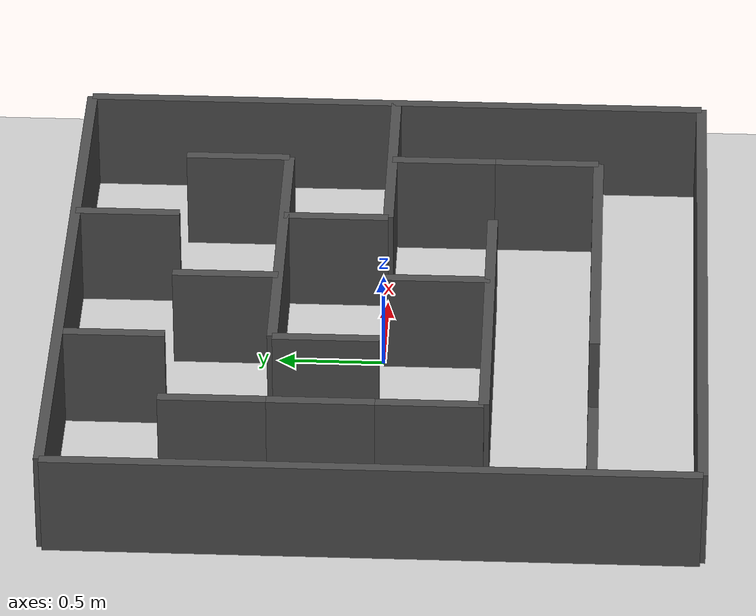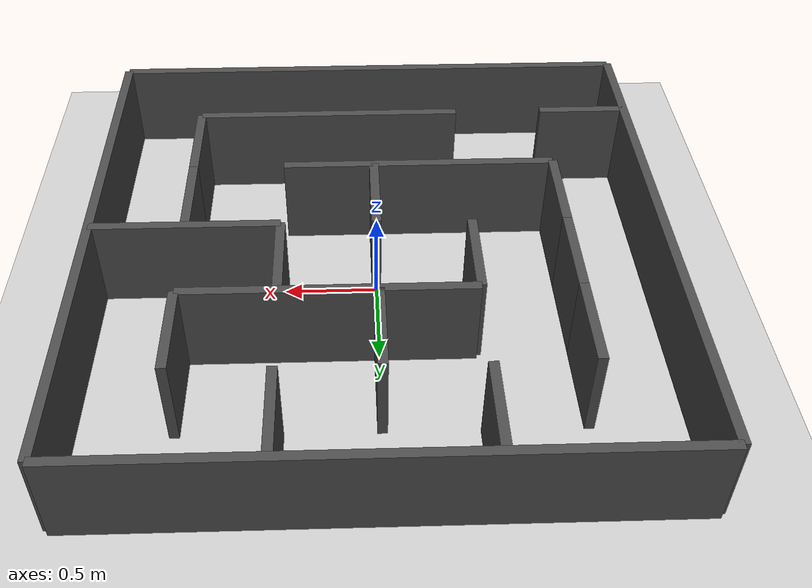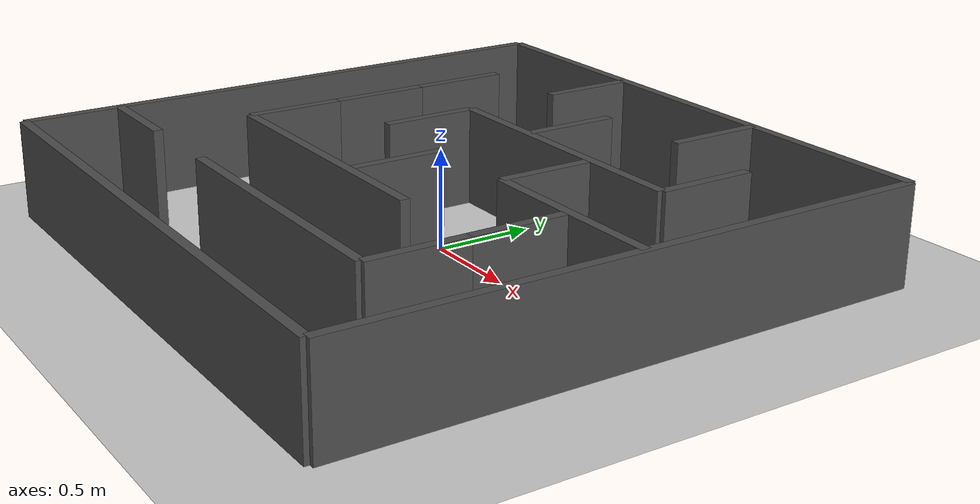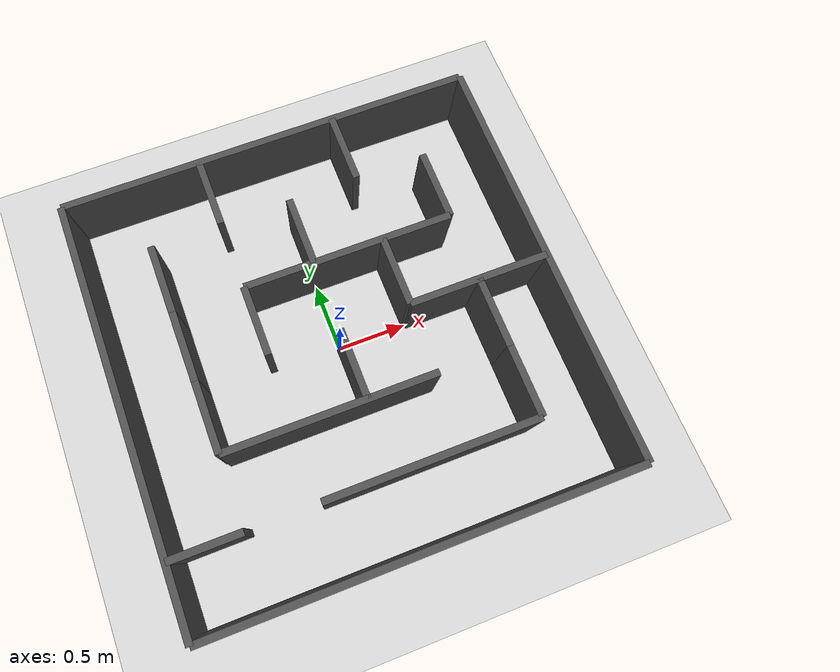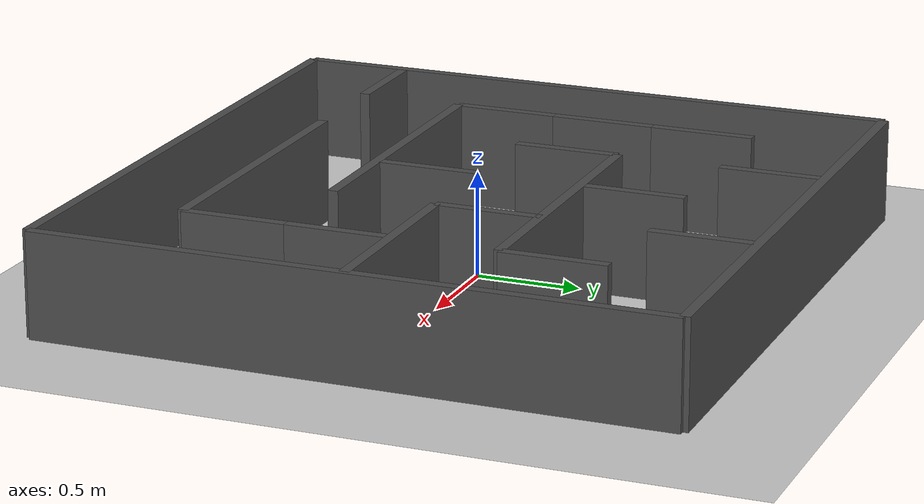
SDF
<?xml version="1.0" ?>
<sdf version="1.6">
<world name="maze_world">
<include>
<uri>model://sun</uri>
</include>
<include>
<uri>model://ground_plane</uri>
</include>

<!-- Outer boundaries -->
<model name="wall_top">
<static>true</static>
<link name="link">
<collision name="collision">
<geometry><box><size>3.0 0.05 0.5</size></box></geometry>
</collision>
<visual name="visual">
<geometry><box><size>3.0 0.05 0.5</size></box></geometry>
<material><ambient>0.3 0.3 0.3 1</ambient></material>
</visual>
<pose>0 1.5 0.25 0 0 0</pose>
</link>
</model>

<model name="wall_bottom">
<static>true</static>
<link name="link">
<collision name="collision">
<geometry><box><size>3.0 0.05 0.5</size></box></geometry>
</collision>
<visual name="visual">
<geometry><box><size>3.0 0.05 0.5</size></box></geometry>
<material><ambient>0.3 0.3 0.3 1</ambient></material>
</visual>
<pose>0 -1.5 0.25 0 0 0</pose>
</link>
</model>

<model name="wall_left">
<static>true</static>
<link name="link">
<collision name="collision">
<geometry><box><size>0.05 3.0 0.5</size></box></geometry>
</collision>
<visual name="visual">
<geometry><box><size>0.05 3.0 0.5</size></box></geometry>
<material><ambient>0.3 0.3 0.3 1</ambient></material>
</visual>
<pose>-1.5 0 0.25 0 0 0</pose>
</link>
</model>

<model name="wall_right">
<static>true</static>
<link name="link">
<collision name="collision">
<geometry><box><size>0.05 3.0 0.5</size></box></geometry>
</collision>
<visual name="visual">
<geometry><box><size>0.05 3.0 0.5</size></box></geometry>
<material><ambient>0.3 0.3 0.3 1</ambient></material>
</visual>
<pose>1.5 0 0.25 0 0 0</pose>
</link>
</model>

<!-- Horizontal walls -->
<model name="wall_h1">
<static>true</static>
<link name="link">
<collision name="collision">
<geometry><box><size>1.5 0.05 0.5</size></box></geometry>
</collision>
<visual name="visual">
<geometry><box><size>1.5 0.05 0.5</size></box></geometry>
<material><ambient>0.3 0.3 0.3 1</ambient></material>
</visual>
<pose>0.25 0.5 0.25 0 0 0</pose>
</link>
</model>

<model name="wall_h2">
<static>true</static>
<link name="link">
<collision name="collision">
<geometry><box><size>1.0 0.05 0.5</size></box></geometry>
</collision>
<visual name="visual">
<geometry><box><size>1.0 0.05 0.5</size></box></geometry>
<material><ambient>0.3 0.3 0.3 1</ambient></material>
</visual>
<pose>1.0 0.0 0.25 0 0 0</pose>
</link>
</model>

<model name="wall_h3">
<static>true</static>
<link name="link">
<collision name="collision">
<geometry><box><size>1.5 0.05 0.5</size></box></geometry>
</collision>
<visual name="visual">
<geometry><box><size>1.5 0.05 0.5</size></box></geometry>
<material><ambient>0.3 0.3 0.3 1</ambient></material>
</visual>
<pose>-0.25 -0.5 0.25 0 0 0</pose>
</link>
</model>

<model name="wall_h4">
<static>true</static>
<link name="link">
<collision name="collision">
<geometry><box><size>0.5 0.05 0.5</size></box></geometry>
</collision>
<visual name="visual">
<geometry><box><size>0.5 0.05 0.5</size></box></geometry>
<material><ambient>0.3 0.3 0.3 1</ambient></material>
</visual>
<pose>-1.25 -1.0 0.25 0 0 0</pose>
</link>
</model>

<model name="wall_h5">
<static>true</static>
<link name="link">
<collision name="collision">
<geometry><box><size>1.5 0.05 0.5</size></box></geometry>
</collision>
<visual name="visual">
<geometry><box><size>1.5 0.05 0.5</size></box></geometry>
<material><ambient>0.3 0.3 0.3 1</ambient></material>
</visual>
<pose>0.25 -1.0 0.25 0 0 0</pose>
</link>
</model>

<!-- Vertical walls -->
<model name="wall_v1">
<static>true</static>
<link name="link">
<collision name="collision">
<geometry><box><size>0.05 0.5 0.5</size></box></geometry>
</collision>
<visual name="visual">
<geometry><box><size>0.05 0.5 0.5</size></box></geometry>
<material><ambient>0.3 0.3 0.3 1</ambient></material>
</visual>
<pose>-1.0 0.75 0.25 0 0 0</pose>
</link>
</model>

<model name="wall_v2">
<static>true</static>
<link name="link">
<collision name="collision">
<geometry><box><size>0.05 0.5 0.5</size></box></geometry>
</collision>
<visual name="visual">
<geometry><box><size>0.05 0.5 0.5</size></box></geometry>
<material><ambient>0.3 0.3 0.3 1</ambient></material>
</visual>
<pose>-1.0 -0.25 0.25 0 0 0</pose>
</link>
</model>

<model name="wall_v3">
<static>true</static>
<link name="link">
<collision name="collision">
<geometry><box><size>0.05 0.5 0.5</size></box></geometry>
</collision>
<visual name="visual">
<geometry><box><size>0.05 0.5 0.5</size></box></geometry>
<material><ambient>0.3 0.3 0.3 1</ambient></material>
</visual>
<pose>0.0 0.75 0.25 0 0 0</pose>
</link>
</model>

<model name="wall_v4">
<static>true</static>
<link name="link">
<collision name="collision">
<geometry><box><size>0.05 0.5 0.5</size></box></geometry>
</collision>
<visual name="visual">
<geometry><box><size>0.05 0.5 0.5</size></box></geometry>
<material><ambient>0.3 0.3 0.3 1</ambient></material>
</visual>
<pose>0.0 -0.25 0.25 0 0 0</pose>
</link>
</model>

<model name="wall_v5">
<static>true</static>
<link name="link">
<collision name="collision">
<geometry><box><size>0.05 0.5 0.5</size></box></geometry>
</collision>
<visual name="visual">
<geometry><box><size>0.05 0.5 0.5</size></box></geometry>
<material><ambient>0.3 0.3 0.3 1</ambient></material>
</visual>
<pose>-0.5 1.25 0.25 0 0 0</pose>
</link>
</model>

<model name="wall_v6">
<static>true</static>
<link name="link">
<collision name="collision">
<geometry><box><size>0.05 0.5 0.5</size></box></geometry>
</collision>
<visual name="visual">
<geometry><box><size>0.05 0.5 0.5</size></box></geometry>
<material><ambient>0.3 0.3 0.3 1</ambient></material>
</visual>
<pose>-1.0 0.25 0.25 0 0 0</pose>
</link>
</model>

<model name="wall_v7">
<static>true</static>
<link name="link">
<collision name="collision">
<geometry><box><size>0.05 0.5 0.5</size></box></geometry>
</collision>
<visual name="visual">
<geometry><box><size>0.05 0.5 0.5</size></box></geometry>
<material><ambient>0.3 0.3 0.3 1</ambient></material>
</visual>
<pose>-0.5 0.25 0.25 0 0 0</pose>
</link>
</model>

<model name="wall_v8">
<static>true</static>
<link name="link">
<collision name="collision">
<geometry><box><size>0.05 0.5 0.5</size></box></geometry>
</collision>
<visual name="visual">
<geometry><box><size>0.05 0.5 0.5</size></box></geometry>
<material><ambient>0.3 0.3 0.3 1</ambient></material>
</visual>
<pose>1.0 0.75 0.25 0 0 0</pose>
</link>
</model>

<model name="wall_v9">
<static>true</static>
<link name="link">
<collision name="collision">
<geometry><box><size>0.05 0.5 0.5</size></box></geometry>
</collision>
<visual name="visual">
<geometry><box><size>0.05 0.5 0.5</size></box></geometry>
<material><ambient>0.3 0.3 0.3 1</ambient></material>
</visual>
<pose>0.5 1.25 0.25 0 0 0</pose>
</link>
</model>

<model name="wall_v10">
<static>true</static>
<link name="link">
<collision name="collision">
<geometry><box><size>0.05 0.5 0.5</size></box></geometry>
</collision>
<visual name="visual">
<geometry><box><size>0.05 0.5 0.5</size></box></geometry>
<material><ambient>0.3 0.3 0.3 1</ambient></material>
</visual>
<pose>0.5 0.25 0.25 0 0 0</pose>
</link>
</model>

<model name="wall_v11">
<static>true</static>
<link name="link">
<collision name="collision">
<geometry><box><size>0.05 0.5 0.5</size></box></geometry>
</collision>
<visual name="visual">
<geometry><box><size>0.05 0.5 0.5</size></box></geometry>
<material><ambient>0.3 0.3 0.3 1</ambient></material>
</visual>
<pose>1.0 -0.75 0.25 0 0 0</pose>
</link>
</model>

<model name="wall_v12">
<static>true</static>
<link name="link">
<collision name="collision">
<geometry><box><size>0.05 0.5 0.5</size></box></geometry>
</collision>
<visual name="visual">
<geometry><box><size>0.05 0.5 0.5</size></box></geometry>
<material><ambient>0.3 0.3 0.3 1</ambient></material>
</visual>
<pose>1.0 -0.25 0.25 0 0 0</pose>
</link>
</model>

</world>
</sdf>
